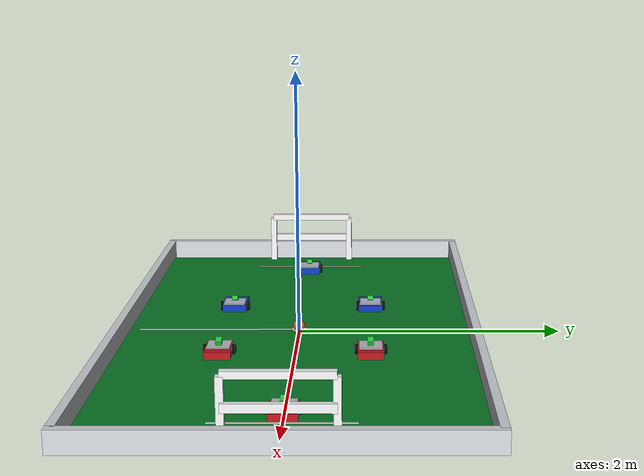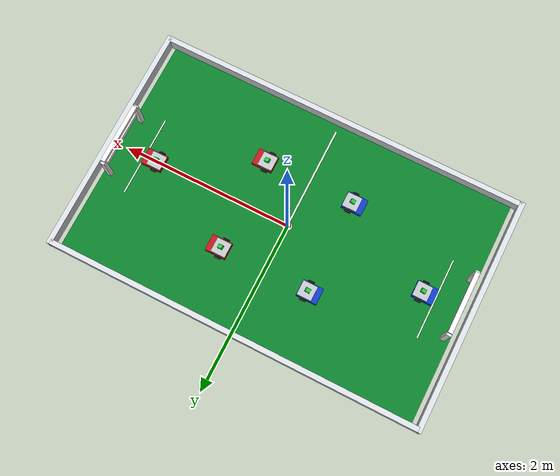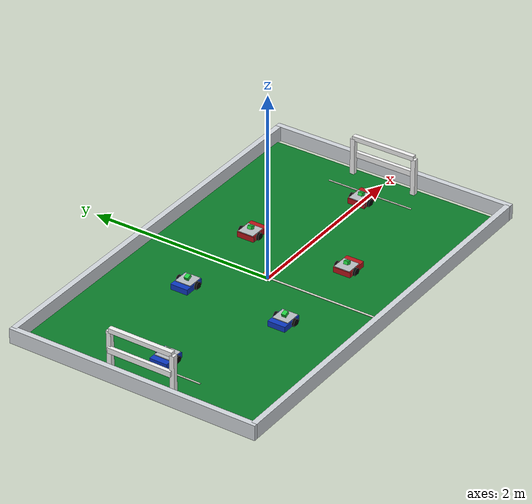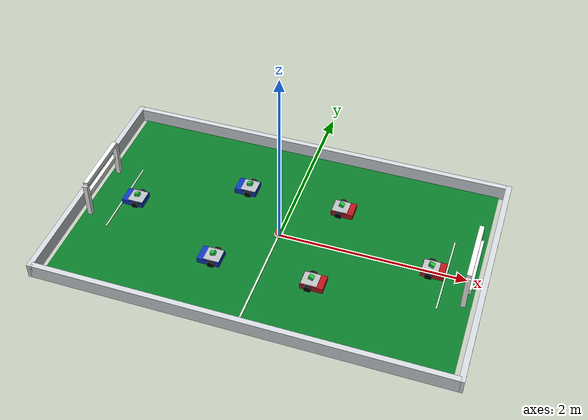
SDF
<?xml version="1.0"?>
<sdf version="1.8">
  <world name="footbot_soccer_field">
    <gravity>0 0 -9.81</gravity>
    <magnetic_field>0 0 0</magnetic_field>
    <atmosphere type="adiabatic"/>

    <plugin filename="ignition-gazebo-physics-system" name="ignition::gazebo::systems::Physics"/>
    <plugin filename="libfootbot_ball_drag_system.so" name="footbot_gazebo::BallDragSystem">
      <link_name>ball_link</link_name>
      <linear_damping>0.18</linear_damping>
      <angular_damping>0.0012</angular_damping>
      <max_force>0.30</max_force>
      <max_torque>0.015</max_torque>
      <stop_linear_speed>0.02</stop_linear_speed>
      <stop_angular_speed>0.35</stop_angular_speed>
    </plugin>
    <plugin filename="ignition-gazebo-user-commands-system" name="ignition::gazebo::systems::UserCommands"/>
    <plugin filename="ignition-gazebo-scene-broadcaster-system" name="ignition::gazebo::systems::SceneBroadcaster"/>
    <plugin filename="ignition-gazebo-sensors-system" name="ignition::gazebo::systems::Sensors">
      <render_engine>ogre2</render_engine>
    </plugin>

    <physics name="default_physics" type="ignored">
      <max_step_size>0.001</max_step_size>
      <real_time_factor>1.0</real_time_factor>
    </physics>

    <scene>
      <ambient>0.65 0.65 0.65 1</ambient>
      <background>0.72 0.78 0.84 1</background>
      <shadows>true</shadows>
    </scene>

    <light name="sun" type="directional">
      <cast_shadows>true</cast_shadows>
      <pose>0 0 6 0 0 0</pose>
      <diffuse>0.92 0.92 0.92 1</diffuse>
      <specular>0.20 0.20 0.20 1</specular>
      <attenuation>
        <range>1000</range>
        <constant>0.9</constant>
        <linear>0.01</linear>
        <quadratic>0.001</quadratic>
      </attenuation>
      <direction>-0.3 0.2 -0.9</direction>
    </light>

    <model name="soccer_field">
      <static>true</static>
      <link name="field_link">
        <collision name="field_collision">
          <geometry>
            <box>
              <size>4.20 2.60 0.02</size>
            </box>
          </geometry>
        </collision>
        <visual name="field_turf">
          <pose>0 0 0.001 0 0 0</pose>
          <geometry>
            <box>
              <size>4.20 2.60 0.02</size>
            </box>
          </geometry>
          <material>
            <ambient>0.04 0.36 0.12 1</ambient>
            <diffuse>0.04 0.48 0.16 1</diffuse>
          </material>
        </visual>
        <visual name="center_line">
          <pose>0 0 0.014 0 0 0</pose>
          <geometry>
            <box>
              <size>0.020 2.45 0.006</size>
            </box>
          </geometry>
          <material>
            <ambient>0.95 0.95 0.90 1</ambient>
            <diffuse>0.95 0.95 0.90 1</diffuse>
          </material>
        </visual>
        <visual name="center_spot">
          <pose>0 0 0.016 0 0 0</pose>
          <geometry>
            <cylinder>
              <radius>0.055</radius>
              <length>0.007</length>
            </cylinder>
          </geometry>
          <material>
            <ambient>0.95 0.95 0.90 1</ambient>
            <diffuse>0.95 0.95 0.90 1</diffuse>
          </material>
        </visual>
        <visual name="left_goal_box_line">
          <pose>-1.78 0 0.014 0 0 0</pose>
          <geometry>
            <box>
              <size>0.015 0.95 0.006</size>
            </box>
          </geometry>
          <material>
            <ambient>0.95 0.95 0.90 1</ambient>
            <diffuse>0.95 0.95 0.90 1</diffuse>
          </material>
        </visual>
        <visual name="right_goal_box_line">
          <pose>1.78 0 0.014 0 0 0</pose>
          <geometry>
            <box>
              <size>0.015 0.95 0.006</size>
            </box>
          </geometry>
          <material>
            <ambient>0.95 0.95 0.90 1</ambient>
            <diffuse>0.95 0.95 0.90 1</diffuse>
          </material>
        </visual>
      </link>
    </model>

    <model name="field_walls">
      <static>true</static>
      <link name="walls_link">
        <collision name="north_wall_collision">
          <pose>0 1.33 0.08 0 0 0</pose>
          <geometry><box><size>4.35 0.06 0.16</size></box></geometry>
        </collision>
        <visual name="north_wall">
          <pose>0 1.33 0.08 0 0 0</pose>
          <geometry><box><size>4.35 0.06 0.16</size></box></geometry>
          <material><ambient>0.82 0.84 0.86 1</ambient><diffuse>0.82 0.84 0.86 1</diffuse></material>
        </visual>
        <collision name="south_wall_collision">
          <pose>0 -1.33 0.08 0 0 0</pose>
          <geometry><box><size>4.35 0.06 0.16</size></box></geometry>
        </collision>
        <visual name="south_wall">
          <pose>0 -1.33 0.08 0 0 0</pose>
          <geometry><box><size>4.35 0.06 0.16</size></box></geometry>
          <material><ambient>0.82 0.84 0.86 1</ambient><diffuse>0.82 0.84 0.86 1</diffuse></material>
        </visual>
        <collision name="west_wall_collision">
          <pose>-2.18 0 0.08 0 0 0</pose>
          <geometry><box><size>0.06 2.72 0.16</size></box></geometry>
        </collision>
        <visual name="west_wall">
          <pose>-2.18 0 0.08 0 0 0</pose>
          <geometry><box><size>0.06 2.72 0.16</size></box></geometry>
          <material><ambient>0.82 0.84 0.86 1</ambient><diffuse>0.82 0.84 0.86 1</diffuse></material>
        </visual>
        <collision name="east_wall_collision">
          <pose>2.18 0 0.08 0 0 0</pose>
          <geometry><box><size>0.06 2.72 0.16</size></box></geometry>
        </collision>
        <visual name="east_wall">
          <pose>2.18 0 0.08 0 0 0</pose>
          <geometry><box><size>0.06 2.72 0.16</size></box></geometry>
          <material><ambient>0.82 0.84 0.86 1</ambient><diffuse>0.82 0.84 0.86 1</diffuse></material>
        </visual>
      </link>
    </model>

    <model name="left_goal">
      <static>true</static>
      <link name="goal_link">
        <visual name="back_bar"><pose>-2.05 0 0.23 0 0 0</pose><geometry><box><size>0.04 0.70 0.06</size></box></geometry><material><ambient>0.95 0.95 0.95 1</ambient><diffuse>0.95 0.95 0.95 1</diffuse></material></visual>
        <visual name="top_bar"><pose>-2.02 0 0.43 0 0 0</pose><geometry><box><size>0.05 0.70 0.05</size></box></geometry><material><ambient>0.95 0.95 0.95 1</ambient><diffuse>0.95 0.95 0.95 1</diffuse></material></visual>
        <visual name="upper_post"><pose>-2.02 0.35 0.22 0 0 0</pose><geometry><box><size>0.05 0.05 0.40</size></box></geometry><material><ambient>0.95 0.95 0.95 1</ambient><diffuse>0.95 0.95 0.95 1</diffuse></material></visual>
        <visual name="lower_post"><pose>-2.02 -0.35 0.22 0 0 0</pose><geometry><box><size>0.05 0.05 0.40</size></box></geometry><material><ambient>0.95 0.95 0.95 1</ambient><diffuse>0.95 0.95 0.95 1</diffuse></material></visual>
      </link>
    </model>

    <model name="right_goal">
      <static>true</static>
      <link name="goal_link">
        <visual name="back_bar"><pose>2.05 0 0.23 0 0 0</pose><geometry><box><size>0.04 0.70 0.06</size></box></geometry><material><ambient>0.95 0.95 0.95 1</ambient><diffuse>0.95 0.95 0.95 1</diffuse></material></visual>
        <visual name="top_bar"><pose>2.02 0 0.43 0 0 0</pose><geometry><box><size>0.05 0.70 0.05</size></box></geometry><material><ambient>0.95 0.95 0.95 1</ambient><diffuse>0.95 0.95 0.95 1</diffuse></material></visual>
        <visual name="upper_post"><pose>2.02 0.35 0.22 0 0 0</pose><geometry><box><size>0.05 0.05 0.40</size></box></geometry><material><ambient>0.95 0.95 0.95 1</ambient><diffuse>0.95 0.95 0.95 1</diffuse></material></visual>
        <visual name="lower_post"><pose>2.02 -0.35 0.22 0 0 0</pose><geometry><box><size>0.05 0.05 0.40</size></box></geometry><material><ambient>0.95 0.95 0.95 1</ambient><diffuse>0.95 0.95 0.95 1</diffuse></material></visual>
      </link>
    </model>

    <model name="center_ball">
      <static>false</static>
      <pose>0 0 0.045 0 0 0</pose>
      <link name="ball_link">
        <inertial>
          <mass>0.04</mass>
          <inertia><ixx>0.0000324</ixx><iyy>0.0000324</iyy><izz>0.0000324</izz><ixy>0</ixy><ixz>0</ixz><iyz>0</iyz></inertia>
        </inertial>
        <velocity_decay><linear>1.20</linear><angular>2.00</angular></velocity_decay>
        <collision name="ball_collision">
          <geometry><sphere><radius>0.045</radius></sphere></geometry>
          <surface>
            <friction>
              <torsional><coefficient>1.0</coefficient><use_patch_radius>true</use_patch_radius><patch_radius>0.025</patch_radius><surface_radius>0.045</surface_radius><ode><slip>0.0</slip></ode></torsional>
              <ode><mu>2.0</mu><mu2>2.0</mu2></ode>
              <bullet><friction>2.0</friction><friction2>2.0</friction2><rolling_friction>0.8</rolling_friction></bullet>
            </friction>
            <bounce><restitution_coefficient>0.05</restitution_coefficient><threshold>0.05</threshold></bounce>
          </surface>
        </collision>
        <visual name="ball_visual">
          <geometry><sphere><radius>0.045</radius></sphere></geometry>
          <material><ambient>1.0 0.38 0.0 1</ambient><diffuse>1.0 0.38 0.0 1</diffuse></material>
        </visual>
      </link>
    </model>

    <model name="blue_goalkeeper">
      <static>true</static>
      <pose>-1.65 0 0 0 0 0</pose>
      <link name="robot_body">
        <collision name="base_collision"><pose>0 0 0.04 0 0 0</pose><geometry><box><size>0.24 0.19 0.06</size></box></geometry></collision>
        <visual name="base"><pose>0 0 0.04 0 0 0</pose><geometry><box><size>0.24 0.19 0.06</size></box></geometry><material><ambient>0.05 0.22 0.75 1</ambient><diffuse>0.05 0.22 0.75 1</diffuse></material></visual>
        <visual name="top_plate"><pose>0.03 0 0.074 0 0 0</pose><geometry><box><size>0.17 0.17 0.008</size></box></geometry><material><ambient>0.72 0.74 0.76 1</ambient><diffuse>0.72 0.74 0.76 1</diffuse></material></visual>
        <visual name="front_panel"><pose>0.112 0 0.034 0 0 0</pose><geometry><box><size>0.012 0.19 0.04</size></box></geometry><material><ambient>0.55 0.57 0.59 1</ambient><diffuse>0.55 0.57 0.59 1</diffuse></material></visual>
        <visual name="left_wheel"><pose>0.035 0.105 0.04 1.5708 0 0</pose><geometry><cylinder><radius>0.04</radius><length>0.024</length></cylinder></geometry><material><ambient>0.02 0.02 0.02 1</ambient><diffuse>0.02 0.02 0.02 1</diffuse></material></visual>
        <visual name="right_wheel"><pose>0.035 -0.105 0.04 1.5708 0 0</pose><geometry><cylinder><radius>0.04</radius><length>0.024</length></cylinder></geometry><material><ambient>0.02 0.02 0.02 1</ambient><diffuse>0.02 0.02 0.02 1</diffuse></material></visual>
        <visual name="camera"><pose>0.025 0 0.104 0 -0.35 0</pose><geometry><box><size>0.055 0.045 0.035</size></box></geometry><material><ambient>0.12 0.78 0.24 1</ambient><diffuse>0.12 0.78 0.24 1</diffuse></material></visual>
        <visual name="lens"><pose>0.044 0 0.102 0 -0.35 0</pose><geometry><box><size>0.020 0.032 0.018</size></box></geometry><material><ambient>0.02 0.02 0.02 1</ambient><diffuse>0.02 0.02 0.02 1</diffuse></material></visual>
        <sensor name="blue_goalkeeper_camera" type="camera">
          <pose>0.080 0 0.115 0 0 0</pose>
          <always_on>true</always_on>
          <update_rate>15</update_rate>
          <visualize>true</visualize>
          <topic>/soccer/camera/image_raw</topic>
          <camera name="blue_goalkeeper_camera">
            <camera_info_topic>/soccer/camera/camera_info</camera_info_topic>
            <horizontal_fov>1.047</horizontal_fov>
            <image>
              <width>640</width>
              <height>480</height>
              <format>R8G8B8</format>
            </image>
            <clip>
              <near>0.05</near>
              <far>8.0</far>
            </clip>
          </camera>
        </sensor>
      </link>
    </model>

    <model name="blue_left_forward">
      <static>true</static>
      <pose>-0.55 0.55 0 0 0 0</pose>
      <link name="robot_body">
        <collision name="base_collision"><pose>0 0 0.04 0 0 0</pose><geometry><box><size>0.24 0.19 0.06</size></box></geometry></collision>
        <visual name="base"><pose>0 0 0.04 0 0 0</pose><geometry><box><size>0.24 0.19 0.06</size></box></geometry><material><ambient>0.05 0.22 0.75 1</ambient><diffuse>0.05 0.22 0.75 1</diffuse></material></visual>
        <visual name="top_plate"><pose>0.03 0 0.074 0 0 0</pose><geometry><box><size>0.17 0.17 0.008</size></box></geometry><material><ambient>0.72 0.74 0.76 1</ambient><diffuse>0.72 0.74 0.76 1</diffuse></material></visual>
        <visual name="front_panel"><pose>0.112 0 0.034 0 0 0</pose><geometry><box><size>0.012 0.19 0.04</size></box></geometry><material><ambient>0.55 0.57 0.59 1</ambient><diffuse>0.55 0.57 0.59 1</diffuse></material></visual>
        <visual name="left_wheel"><pose>0.035 0.105 0.04 1.5708 0 0</pose><geometry><cylinder><radius>0.04</radius><length>0.024</length></cylinder></geometry><material><ambient>0.02 0.02 0.02 1</ambient><diffuse>0.02 0.02 0.02 1</diffuse></material></visual>
        <visual name="right_wheel"><pose>0.035 -0.105 0.04 1.5708 0 0</pose><geometry><cylinder><radius>0.04</radius><length>0.024</length></cylinder></geometry><material><ambient>0.02 0.02 0.02 1</ambient><diffuse>0.02 0.02 0.02 1</diffuse></material></visual>
        <visual name="camera"><pose>0.025 0 0.104 0 -0.35 0</pose><geometry><box><size>0.055 0.045 0.035</size></box></geometry><material><ambient>0.12 0.78 0.24 1</ambient><diffuse>0.12 0.78 0.24 1</diffuse></material></visual>
        <visual name="lens"><pose>0.044 0 0.102 0 -0.35 0</pose><geometry><box><size>0.020 0.032 0.018</size></box></geometry><material><ambient>0.02 0.02 0.02 1</ambient><diffuse>0.02 0.02 0.02 1</diffuse></material></visual>
      </link>
    </model>

    <model name="blue_right_forward">
      <static>true</static>
      <pose>-0.55 -0.55 0 0 0 0</pose>
      <link name="robot_body">
        <collision name="base_collision"><pose>0 0 0.04 0 0 0</pose><geometry><box><size>0.24 0.19 0.06</size></box></geometry></collision>
        <visual name="base"><pose>0 0 0.04 0 0 0</pose><geometry><box><size>0.24 0.19 0.06</size></box></geometry><material><ambient>0.05 0.22 0.75 1</ambient><diffuse>0.05 0.22 0.75 1</diffuse></material></visual>
        <visual name="top_plate"><pose>0.03 0 0.074 0 0 0</pose><geometry><box><size>0.17 0.17 0.008</size></box></geometry><material><ambient>0.72 0.74 0.76 1</ambient><diffuse>0.72 0.74 0.76 1</diffuse></material></visual>
        <visual name="front_panel"><pose>0.112 0 0.034 0 0 0</pose><geometry><box><size>0.012 0.19 0.04</size></box></geometry><material><ambient>0.55 0.57 0.59 1</ambient><diffuse>0.55 0.57 0.59 1</diffuse></material></visual>
        <visual name="left_wheel"><pose>0.035 0.105 0.04 1.5708 0 0</pose><geometry><cylinder><radius>0.04</radius><length>0.024</length></cylinder></geometry><material><ambient>0.02 0.02 0.02 1</ambient><diffuse>0.02 0.02 0.02 1</diffuse></material></visual>
        <visual name="right_wheel"><pose>0.035 -0.105 0.04 1.5708 0 0</pose><geometry><cylinder><radius>0.04</radius><length>0.024</length></cylinder></geometry><material><ambient>0.02 0.02 0.02 1</ambient><diffuse>0.02 0.02 0.02 1</diffuse></material></visual>
        <visual name="camera"><pose>0.025 0 0.104 0 -0.35 0</pose><geometry><box><size>0.055 0.045 0.035</size></box></geometry><material><ambient>0.12 0.78 0.24 1</ambient><diffuse>0.12 0.78 0.24 1</diffuse></material></visual>
        <visual name="lens"><pose>0.044 0 0.102 0 -0.35 0</pose><geometry><box><size>0.020 0.032 0.018</size></box></geometry><material><ambient>0.02 0.02 0.02 1</ambient><diffuse>0.02 0.02 0.02 1</diffuse></material></visual>
      </link>
    </model>

    <model name="red_goalkeeper">
      <static>true</static>
      <pose>1.65 0 0 0 0 3.14159</pose>
      <link name="robot_body">
        <collision name="base_collision"><pose>0 0 0.04 0 0 0</pose><geometry><box><size>0.24 0.19 0.06</size></box></geometry></collision>
        <visual name="base"><pose>0 0 0.04 0 0 0</pose><geometry><box><size>0.24 0.19 0.06</size></box></geometry><material><ambient>0.72 0.08 0.10 1</ambient><diffuse>0.72 0.08 0.10 1</diffuse></material></visual>
        <visual name="top_plate"><pose>0.03 0 0.074 0 0 0</pose><geometry><box><size>0.17 0.17 0.008</size></box></geometry><material><ambient>0.72 0.74 0.76 1</ambient><diffuse>0.72 0.74 0.76 1</diffuse></material></visual>
        <visual name="front_panel"><pose>0.112 0 0.034 0 0 0</pose><geometry><box><size>0.012 0.19 0.04</size></box></geometry><material><ambient>0.55 0.57 0.59 1</ambient><diffuse>0.55 0.57 0.59 1</diffuse></material></visual>
        <visual name="left_wheel"><pose>0.035 0.105 0.04 1.5708 0 0</pose><geometry><cylinder><radius>0.04</radius><length>0.024</length></cylinder></geometry><material><ambient>0.02 0.02 0.02 1</ambient><diffuse>0.02 0.02 0.02 1</diffuse></material></visual>
        <visual name="right_wheel"><pose>0.035 -0.105 0.04 1.5708 0 0</pose><geometry><cylinder><radius>0.04</radius><length>0.024</length></cylinder></geometry><material><ambient>0.02 0.02 0.02 1</ambient><diffuse>0.02 0.02 0.02 1</diffuse></material></visual>
        <visual name="camera"><pose>0.025 0 0.104 0 -0.35 0</pose><geometry><box><size>0.055 0.045 0.035</size></box></geometry><material><ambient>0.12 0.78 0.24 1</ambient><diffuse>0.12 0.78 0.24 1</diffuse></material></visual>
        <visual name="lens"><pose>0.044 0 0.102 0 -0.35 0</pose><geometry><box><size>0.020 0.032 0.018</size></box></geometry><material><ambient>0.02 0.02 0.02 1</ambient><diffuse>0.02 0.02 0.02 1</diffuse></material></visual>
      </link>
    </model>

    <model name="red_left_forward">
      <static>true</static>
      <pose>0.55 0.55 0 0 0 3.14159</pose>
      <link name="robot_body">
        <collision name="base_collision"><pose>0 0 0.04 0 0 0</pose><geometry><box><size>0.24 0.19 0.06</size></box></geometry></collision>
        <visual name="base"><pose>0 0 0.04 0 0 0</pose><geometry><box><size>0.24 0.19 0.06</size></box></geometry><material><ambient>0.72 0.08 0.10 1</ambient><diffuse>0.72 0.08 0.10 1</diffuse></material></visual>
        <visual name="top_plate"><pose>0.03 0 0.074 0 0 0</pose><geometry><box><size>0.17 0.17 0.008</size></box></geometry><material><ambient>0.72 0.74 0.76 1</ambient><diffuse>0.72 0.74 0.76 1</diffuse></material></visual>
        <visual name="front_panel"><pose>0.112 0 0.034 0 0 0</pose><geometry><box><size>0.012 0.19 0.04</size></box></geometry><material><ambient>0.55 0.57 0.59 1</ambient><diffuse>0.55 0.57 0.59 1</diffuse></material></visual>
        <visual name="left_wheel"><pose>0.035 0.105 0.04 1.5708 0 0</pose><geometry><cylinder><radius>0.04</radius><length>0.024</length></cylinder></geometry><material><ambient>0.02 0.02 0.02 1</ambient><diffuse>0.02 0.02 0.02 1</diffuse></material></visual>
        <visual name="right_wheel"><pose>0.035 -0.105 0.04 1.5708 0 0</pose><geometry><cylinder><radius>0.04</radius><length>0.024</length></cylinder></geometry><material><ambient>0.02 0.02 0.02 1</ambient><diffuse>0.02 0.02 0.02 1</diffuse></material></visual>
        <visual name="camera"><pose>0.025 0 0.104 0 -0.35 0</pose><geometry><box><size>0.055 0.045 0.035</size></box></geometry><material><ambient>0.12 0.78 0.24 1</ambient><diffuse>0.12 0.78 0.24 1</diffuse></material></visual>
        <visual name="lens"><pose>0.044 0 0.102 0 -0.35 0</pose><geometry><box><size>0.020 0.032 0.018</size></box></geometry><material><ambient>0.02 0.02 0.02 1</ambient><diffuse>0.02 0.02 0.02 1</diffuse></material></visual>
      </link>
    </model>

    <model name="red_right_forward">
      <static>true</static>
      <pose>0.55 -0.55 0 0 0 3.14159</pose>
      <link name="robot_body">
        <collision name="base_collision"><pose>0 0 0.04 0 0 0</pose><geometry><box><size>0.24 0.19 0.06</size></box></geometry></collision>
        <visual name="base"><pose>0 0 0.04 0 0 0</pose><geometry><box><size>0.24 0.19 0.06</size></box></geometry><material><ambient>0.72 0.08 0.10 1</ambient><diffuse>0.72 0.08 0.10 1</diffuse></material></visual>
        <visual name="top_plate"><pose>0.03 0 0.074 0 0 0</pose><geometry><box><size>0.17 0.17 0.008</size></box></geometry><material><ambient>0.72 0.74 0.76 1</ambient><diffuse>0.72 0.74 0.76 1</diffuse></material></visual>
        <visual name="front_panel"><pose>0.112 0 0.034 0 0 0</pose><geometry><box><size>0.012 0.19 0.04</size></box></geometry><material><ambient>0.55 0.57 0.59 1</ambient><diffuse>0.55 0.57 0.59 1</diffuse></material></visual>
        <visual name="left_wheel"><pose>0.035 0.105 0.04 1.5708 0 0</pose><geometry><cylinder><radius>0.04</radius><length>0.024</length></cylinder></geometry><material><ambient>0.02 0.02 0.02 1</ambient><diffuse>0.02 0.02 0.02 1</diffuse></material></visual>
        <visual name="right_wheel"><pose>0.035 -0.105 0.04 1.5708 0 0</pose><geometry><cylinder><radius>0.04</radius><length>0.024</length></cylinder></geometry><material><ambient>0.02 0.02 0.02 1</ambient><diffuse>0.02 0.02 0.02 1</diffuse></material></visual>
        <visual name="camera"><pose>0.025 0 0.104 0 -0.35 0</pose><geometry><box><size>0.055 0.045 0.035</size></box></geometry><material><ambient>0.12 0.78 0.24 1</ambient><diffuse>0.12 0.78 0.24 1</diffuse></material></visual>
        <visual name="lens"><pose>0.044 0 0.102 0 -0.35 0</pose><geometry><box><size>0.020 0.032 0.018</size></box></geometry><material><ambient>0.02 0.02 0.02 1</ambient><diffuse>0.02 0.02 0.02 1</diffuse></material></visual>
      </link>
    </model>
  </world>
</sdf>
